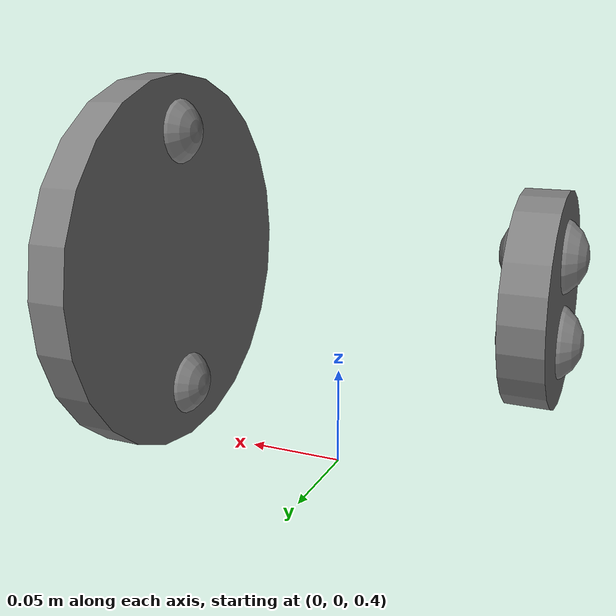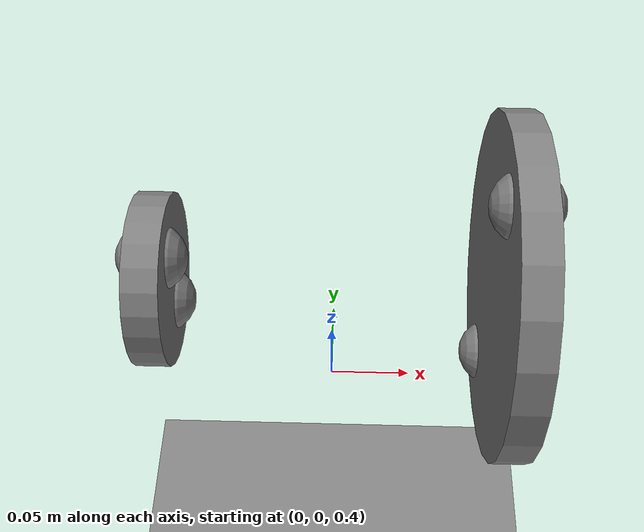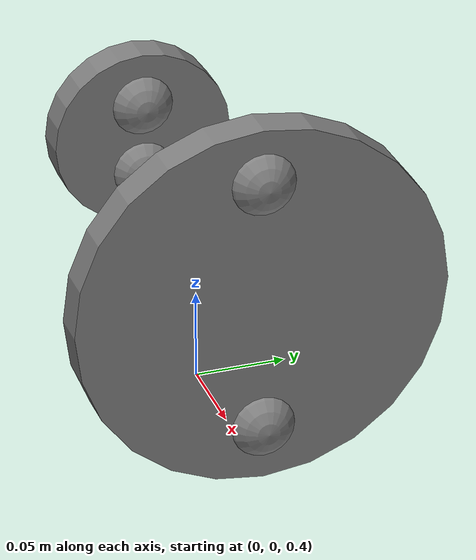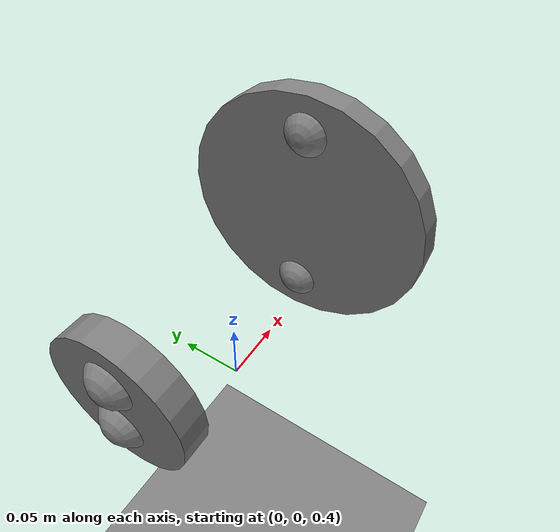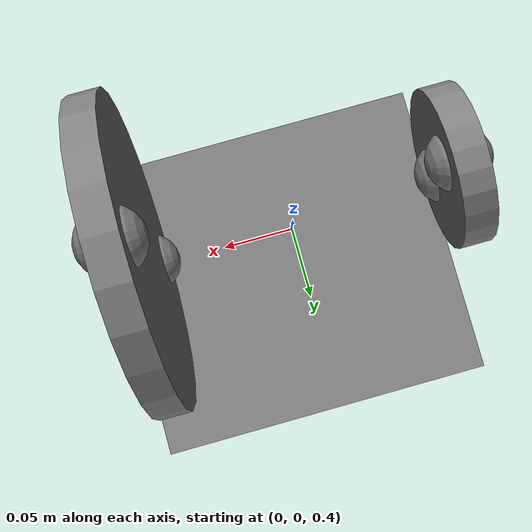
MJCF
<mujoco model="rover (v0.2)">

    <compiler inertiafromgeom="true" angle="degree"/>
	<option	timestep="0.02" gravity="0 0 -9.81"/>

	<asset>
		<material name="MatWheel" specular="1" rgba=".1 .1 .1 1"/>
		<material name="MatBody" specular="1" rgba=".6 .6 .1 1"/>
	</asset>

	<default>
		<!--making every geom collidable. expect those that dont are default-->
		<geom contype="1" conaffinity="1"/>
	</default>

	<default class="acker_solver_param">
		<!--solver impedance and reference(?) for ackerman equality constraint-->
		<!--default solimp: "0.900 0.950 0.001"-->
		<!--default solref: "0.020 1.000"-->
		<!--solref: (timeconst, dampratio)
			b = 2 / (dmax * timeconst)
			k = d(r) / (dmax * dmax * timeconst * timeconst * dampratio * dampratio)
		-->
		<equality solimp="0.9950 0.9990 0.0001" solref="0.0100 0.7500"/>
	</default>

	<visual>
		<headlight active="1"/>
		<scale camera=".5"/>
		<map znear="0.001" zfar="1000"/>
	</visual>

    <worldbody>
        <light directional="true" diffuse=".4 .4 .4" specular="0.1 0.1 0.1" pos="0 0 5.0" dir="0 0 -1" castshadow="false"/>
        <light directional="true" diffuse=".6 .6 .6" specular="0.2 0.2 0.2" pos="0 0 4" dir="0 0 -1"/>

        <geom name="ground" type="plane" size="0 0 1" pos="0 0 0" quat="1 0 0 0"/>

        <body pos=".1 0 .5" euler="0 90 0">
            <joint type="hinge" axis="0 0 1" name="j1"/>
            <geom type="cylinder" size=".1 .01"/>
            <site pos=".07 0 0" size=".02"/>
            <site pos="-.07 0 0" size=".02"/>
        </body>
		<body pos="-.1 0 .5" euler="0 90 0">
            <joint type="hinge" axis="0 0 1" name="j2"/>
			<geom type="cylinder" size=".05 .01"/>
            <site pos=".02 0 0" size=".02"/>
            <site pos="-.02 0 0" size=".02"/>
        </body>
    </worldbody>

	<tendon>
		<fixed name="tendon">
			<joint joint="j1" coef="1"/>
			<joint joint="j2" coef=".1"/>
		</fixed>
	</tendon>

    <actuator>
        <motor name="tendon-ctrl" tendon="tendon" ctrllimited="true" ctrlrange="-.1 .1"/>
    </actuator>

</mujoco>
